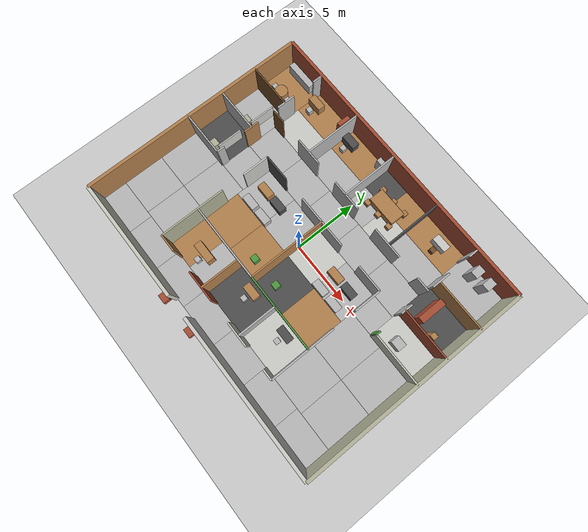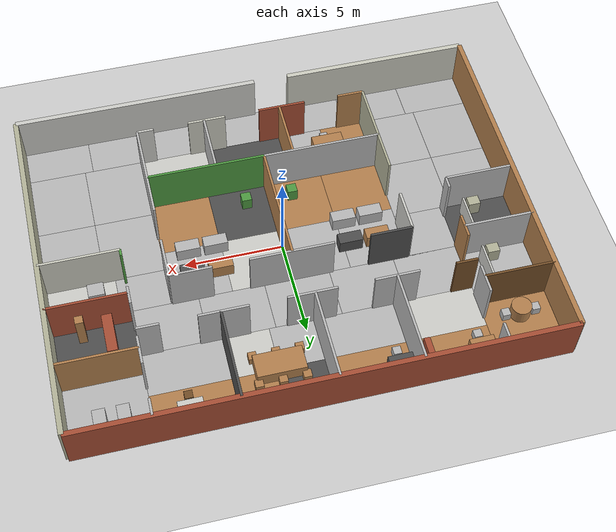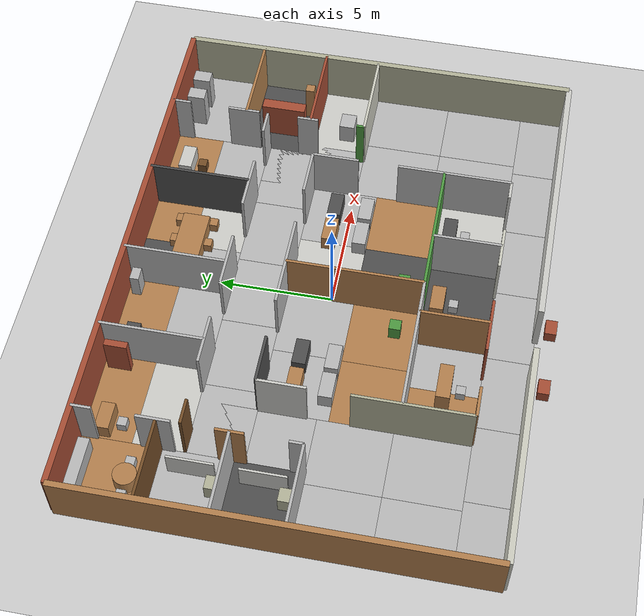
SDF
<?xml version="1.0"?>
<sdf version="1.6">
  <world name="office2">
    <include><uri>model://sun</uri></include>
    <include><uri>model://ground_plane</uri></include>

    <model name="floor_skin">
      <static>true</static>
      <link name="tiles">
        <visual name="f001"><pose>-10.25 7.25 0.002 0 0 0</pose><geometry><box><size>3.5 3.5 0.004</size></box></geometry>
    <material><script><uri>file://media/materials/scripts/gazebo.material</uri><name>Gazebo/WoodFloor</name></script></material></visual>
        <visual name="f002"><pose>-10.25 4 0.002 0 0 0</pose><geometry><box><size>3.5 3 0.004</size></box></geometry>
    <material><script><uri>file://media/materials/scripts/gazebo.material</uri><name>Gazebo/Pedestrian</name></script></material></visual>
        <visual name="f003"><pose>-10.25 1 0.002 0 0 0</pose><geometry><box><size>3.5 3 0.004</size></box></geometry>
    <material><script><uri>file://media/materials/scripts/gazebo.material</uri><name>Gazebo/Road</name></script></material></visual>
        <visual name="f004"><pose>-6.5 5.625 0.002 0 0 0</pose><geometry><box><size>4 2.25 0.004</size></box></geometry>
    <material><script><uri>file://media/materials/scripts/gazebo.material</uri><name>Gazebo/CeilingTiled</name></script></material></visual>
        <visual name="f005"><pose>-6.5 7.875 0.002 0 0 0</pose><geometry><box><size>4 2.25 0.004</size></box></geometry>
    <material><script><uri>file://media/materials/scripts/gazebo.material</uri><name>Gazebo/Wood</name></script></material></visual>
        <visual name="f006"><pose>-2.5 5.625 0.002 0 0 0</pose><geometry><box><size>4 2.25 0.004</size></box></geometry>
    <material><script><uri>file://media/materials/scripts/gazebo.material</uri><name>Gazebo/Steps</name></script></material></visual>
        <visual name="f007"><pose>-2.5 7.875 0.002 0 0 0</pose><geometry><box><size>4 2.25 0.004</size></box></geometry>
    <material><script><uri>file://media/materials/scripts/gazebo.material</uri><name>Gazebo/WoodFloor</name></script></material></visual>
        <visual name="f008"><pose>0.625 5.625 0.002 0 0 0</pose><geometry><box><size>2.25 2.25 0.004</size></box></geometry>
    <material><script><uri>file://media/materials/scripts/gazebo.material</uri><name>Gazebo/Pedestrian</name></script></material></visual>
        <visual name="f009"><pose>0.625 7.875 0.002 0 0 0</pose><geometry><box><size>2.25 2.25 0.004</size></box></geometry>
    <material><script><uri>file://media/materials/scripts/gazebo.material</uri><name>Gazebo/Road</name></script></material></visual>
        <visual name="f010"><pose>2.875 5.625 0.002 0 0 0</pose><geometry><box><size>2.25 2.25 0.004</size></box></geometry>
    <material><script><uri>file://media/materials/scripts/gazebo.material</uri><name>Gazebo/CeilingTiled</name></script></material></visual>
        <visual name="f011"><pose>2.875 7.875 0.002 0 0 0</pose><geometry><box><size>2.25 2.25 0.004</size></box></geometry>
    <material><script><uri>file://media/materials/scripts/gazebo.material</uri><name>Gazebo/Wood</name></script></material></visual>
        <visual name="f012"><pose>6 5.625 0.002 0 0 0</pose><geometry><box><size>4 2.25 0.004</size></box></geometry>
    <material><script><uri>file://media/materials/scripts/gazebo.material</uri><name>Gazebo/Steps</name></script></material></visual>
        <visual name="f013"><pose>6 7.875 0.002 0 0 0</pose><geometry><box><size>4 2.25 0.004</size></box></geometry>
    <material><script><uri>file://media/materials/scripts/gazebo.material</uri><name>Gazebo/WoodFloor</name></script></material></visual>
        <visual name="f014"><pose>10 7.25 0.002 0 0 0</pose><geometry><box><size>4 3.5 0.004</size></box></geometry>
    <material><script><uri>file://media/materials/scripts/gazebo.material</uri><name>Gazebo/Pedestrian</name></script></material></visual>
        <visual name="f015"><pose>10 4 0.002 0 0 0</pose><geometry><box><size>4 3 0.004</size></box></geometry>
    <material><script><uri>file://media/materials/scripts/gazebo.material</uri><name>Gazebo/Road</name></script></material></visual>
        <visual name="f016"><pose>10 1.25 0.002 0 0 0</pose><geometry><box><size>4 2.5 0.004</size></box></geometry>
    <material><script><uri>file://media/materials/scripts/gazebo.material</uri><name>Gazebo/CeilingTiled</name></script></material></visual>
        <visual name="f017"><pose>-4.5 -2.5 0.002 0 0 0</pose><geometry><box><size>3 3 0.004</size></box></geometry>
    <material><script><uri>file://media/materials/scripts/gazebo.material</uri><name>Gazebo/Wood</name></script></material></visual>
        <visual name="f018"><pose>-4.5 0.5 0.002 0 0 0</pose><geometry><box><size>3 3 0.004</size></box></geometry>
    <material><script><uri>file://media/materials/scripts/gazebo.material</uri><name>Gazebo/Steps</name></script></material></visual>
        <visual name="f019"><pose>-1.5 -2.5 0.002 0 0 0</pose><geometry><box><size>3 3 0.004</size></box></geometry>
    <material><script><uri>file://media/materials/scripts/gazebo.material</uri><name>Gazebo/WoodFloor</name></script></material></visual>
        <visual name="f020"><pose>-1.5 0.5 0.002 0 0 0</pose><geometry><box><size>3 3 0.004</size></box></geometry>
    <material><script><uri>file://media/materials/scripts/gazebo.material</uri><name>Gazebo/Pedestrian</name></script></material></visual>
        <visual name="f021"><pose>1.5 -2.5 0.002 0 0 0</pose><geometry><box><size>3 3 0.004</size></box></geometry>
    <material><script><uri>file://media/materials/scripts/gazebo.material</uri><name>Gazebo/Road</name></script></material></visual>
        <visual name="f022"><pose>1.5 0.5 0.002 0 0 0</pose><geometry><box><size>3 3 0.004</size></box></geometry>
    <material><script><uri>file://media/materials/scripts/gazebo.material</uri><name>Gazebo/CeilingTiled</name></script></material></visual>
        <visual name="f023"><pose>4.5 -2.5 0.002 0 0 0</pose><geometry><box><size>3 3 0.004</size></box></geometry>
    <material><script><uri>file://media/materials/scripts/gazebo.material</uri><name>Gazebo/Wood</name></script></material></visual>
        <visual name="f024"><pose>4.5 0.5 0.002 0 0 0</pose><geometry><box><size>3 3 0.004</size></box></geometry>
    <material><script><uri>file://media/materials/scripts/gazebo.material</uri><name>Gazebo/Steps</name></script></material></visual>
        <visual name="f025"><pose>-4.875 -5.5 0.002 0 0 0</pose><geometry><box><size>2.25 3 0.004</size></box></geometry>
    <material><script><uri>file://media/materials/scripts/gazebo.material</uri><name>Gazebo/WoodFloor</name></script></material></visual>
        <visual name="f026"><pose>-2.625 -5.5 0.002 0 0 0</pose><geometry><box><size>2.25 3 0.004</size></box></geometry>
    <material><script><uri>file://media/materials/scripts/gazebo.material</uri><name>Gazebo/Pedestrian</name></script></material></visual>
        <visual name="f027"><pose>0.5 -5.5 0.002 0 0 0</pose><geometry><box><size>4 3 0.004</size></box></geometry>
    <material><script><uri>file://media/materials/scripts/gazebo.material</uri><name>Gazebo/Road</name></script></material></visual>
        <visual name="f028"><pose>4.25 -5.5 0.002 0 0 0</pose><geometry><box><size>3.5 3 0.004</size></box></geometry>
    <material><script><uri>file://media/materials/scripts/gazebo.material</uri><name>Gazebo/CeilingTiled</name></script></material></visual>
        <visual name="f029"><pose>-6.85 3.25 0.002 0 0 0</pose><geometry><box><size>3.3 2.5 0.004</size></box></geometry>
    <material><script><uri>file://media/materials/scripts/gazebo.material</uri><name>Gazebo/Footway</name></script></material></visual>
        <visual name="f030"><pose>-3.55 3.25 0.002 0 0 0</pose><geometry><box><size>3.3 2.5 0.004</size></box></geometry>
    <material><script><uri>file://media/materials/scripts/gazebo.material</uri><name>Gazebo/Footway</name></script></material></visual>
        <visual name="f031"><pose>-0.25 3.25 0.002 0 0 0</pose><geometry><box><size>3.3 2.5 0.004</size></box></geometry>
    <material><script><uri>file://media/materials/scripts/gazebo.material</uri><name>Gazebo/Footway</name></script></material></visual>
        <visual name="f032"><pose>3.05 3.25 0.002 0 0 0</pose><geometry><box><size>3.3 2.5 0.004</size></box></geometry>
    <material><script><uri>file://media/materials/scripts/gazebo.material</uri><name>Gazebo/Footway</name></script></material></visual>
        <visual name="f033"><pose>6.35 3.25 0.002 0 0 0</pose><geometry><box><size>3.3 2.5 0.004</size></box></geometry>
    <material><script><uri>file://media/materials/scripts/gazebo.material</uri><name>Gazebo/Footway</name></script></material></visual>
        <visual name="f034"><pose>-7.25 0.75 0.002 0 0 0</pose><geometry><box><size>2.5 2.5 0.004</size></box></geometry>
    <material><script><uri>file://media/materials/scripts/gazebo.material</uri><name>Gazebo/Footway</name></script></material></visual>
        <visual name="f035"><pose>-7.25 3.25 0.002 0 0 0</pose><geometry><box><size>2.5 2.5 0.004</size></box></geometry>
    <material><script><uri>file://media/materials/scripts/gazebo.material</uri><name>Gazebo/Footway</name></script></material></visual>
        <visual name="f036"><pose>-10.5 -5.375 0.002 0 0 0</pose><geometry><box><size>3 3.25 0.004</size></box></geometry>
    <material><script><uri>file://media/materials/scripts/gazebo.material</uri><name>Gazebo/Footway</name></script></material></visual>
        <visual name="f037"><pose>-10.5 -2.125 0.002 0 0 0</pose><geometry><box><size>3 3.25 0.004</size></box></geometry>
    <material><script><uri>file://media/materials/scripts/gazebo.material</uri><name>Gazebo/Footway</name></script></material></visual>
        <visual name="f038"><pose>-7.5 -5.375 0.002 0 0 0</pose><geometry><box><size>3 3.25 0.004</size></box></geometry>
    <material><script><uri>file://media/materials/scripts/gazebo.material</uri><name>Gazebo/Footway</name></script></material></visual>
        <visual name="f039"><pose>-7.5 -2.125 0.002 0 0 0</pose><geometry><box><size>3 3.25 0.004</size></box></geometry>
    <material><script><uri>file://media/materials/scripts/gazebo.material</uri><name>Gazebo/Footway</name></script></material></visual>
        <visual name="f040"><pose>7.25 1.125 0.002 0 0 0</pose><geometry><box><size>2.5 2.25 0.004</size></box></geometry>
    <material><script><uri>file://media/materials/scripts/gazebo.material</uri><name>Gazebo/Footway</name></script></material></visual>
        <visual name="f041"><pose>7.25 3.375 0.002 0 0 0</pose><geometry><box><size>2.5 2.25 0.004</size></box></geometry>
    <material><script><uri>file://media/materials/scripts/gazebo.material</uri><name>Gazebo/Footway</name></script></material></visual>
        <visual name="f042"><pose>7.5 -5.25 0.002 0 0 0</pose><geometry><box><size>3 3.5 0.004</size></box></geometry>
    <material><script><uri>file://media/materials/scripts/gazebo.material</uri><name>Gazebo/Footway</name></script></material></visual>
        <visual name="f043"><pose>7.5 -1.75 0.002 0 0 0</pose><geometry><box><size>3 3.5 0.004</size></box></geometry>
    <material><script><uri>file://media/materials/scripts/gazebo.material</uri><name>Gazebo/Footway</name></script></material></visual>
        <visual name="f044"><pose>10.5 -5.25 0.002 0 0 0</pose><geometry><box><size>3 3.5 0.004</size></box></geometry>
    <material><script><uri>file://media/materials/scripts/gazebo.material</uri><name>Gazebo/Footway</name></script></material></visual>
        <visual name="f045"><pose>10.5 -1.75 0.002 0 0 0</pose><geometry><box><size>3 3.5 0.004</size></box></geometry>
    <material><script><uri>file://media/materials/scripts/gazebo.material</uri><name>Gazebo/Footway</name></script></material></visual>
        <visual name="f046"><pose>-10.2857 -8 0.002 0 0 0</pose><geometry><box><size>3.42857 2 0.004</size></box></geometry>
    <material><script><uri>file://media/materials/scripts/gazebo.material</uri><name>Gazebo/Footway</name></script></material></visual>
        <visual name="f047"><pose>-6.85714 -8 0.002 0 0 0</pose><geometry><box><size>3.42857 2 0.004</size></box></geometry>
    <material><script><uri>file://media/materials/scripts/gazebo.material</uri><name>Gazebo/Footway</name></script></material></visual>
        <visual name="f048"><pose>-3.42857 -8 0.002 0 0 0</pose><geometry><box><size>3.42857 2 0.004</size></box></geometry>
    <material><script><uri>file://media/materials/scripts/gazebo.material</uri><name>Gazebo/Footway</name></script></material></visual>
        <visual name="f049"><pose>0 -8 0.002 0 0 0</pose><geometry><box><size>3.42857 2 0.004</size></box></geometry>
    <material><script><uri>file://media/materials/scripts/gazebo.material</uri><name>Gazebo/Footway</name></script></material></visual>
        <visual name="f050"><pose>3.42857 -8 0.002 0 0 0</pose><geometry><box><size>3.42857 2 0.004</size></box></geometry>
    <material><script><uri>file://media/materials/scripts/gazebo.material</uri><name>Gazebo/Footway</name></script></material></visual>
        <visual name="f051"><pose>6.85714 -8 0.002 0 0 0</pose><geometry><box><size>3.42857 2 0.004</size></box></geometry>
    <material><script><uri>file://media/materials/scripts/gazebo.material</uri><name>Gazebo/Footway</name></script></material></visual>
        <visual name="f052"><pose>10.2857 -8 0.002 0 0 0</pose><geometry><box><size>3.42857 2 0.004</size></box></geometry>
    <material><script><uri>file://media/materials/scripts/gazebo.material</uri><name>Gazebo/Footway</name></script></material></visual>
      </link>
    </model>

    <model name="building">
      <static>true</static>
      <link name="walls">

        <!-- outer shell -->
        <collision name="w001_c"><pose>0 9 1.25 0 0 0</pose><geometry><box><size>24 0.25 2.5</size></box></geometry></collision>
        <visual   name="w001_v"><pose>0 9 1.25 0 0 0</pose><geometry><box><size>24 0.25 2.5</size></box></geometry>
    <material><script><uri>file://media/materials/scripts/gazebo.material</uri><name>Gazebo/Bricks</name></script></material></visual>
        <collision name="w002_c"><pose>-7.2 -9 1.25 0 0 0</pose><geometry><box><size>9.6 0.25 2.5</size></box></geometry></collision>
        <visual   name="w002_v"><pose>-7.2 -9 1.25 0 0 0</pose><geometry><box><size>9.6 0.25 2.5</size></box></geometry>
    <material><script><uri>file://media/materials/scripts/gazebo.material</uri><name>Gazebo/PaintedWall</name></script></material></visual>
        <collision name="w003_c"><pose>5.7 -9 1.25 0 0 0</pose><geometry><box><size>12.6 0.25 2.5</size></box></geometry></collision>
        <visual   name="w003_v"><pose>5.7 -9 1.25 0 0 0</pose><geometry><box><size>12.6 0.25 2.5</size></box></geometry>
    <material><script><uri>file://media/materials/scripts/gazebo.material</uri><name>Gazebo/CeilingTiled</name></script></material></visual>
        <collision name="w004_c"><pose>12 0 1.25 0 0 0</pose><geometry><box><size>0.25 18 2.5</size></box></geometry></collision>
        <visual   name="w004_v"><pose>12 0 1.25 0 0 0</pose><geometry><box><size>0.25 18 2.5</size></box></geometry>
    <material><script><uri>file://media/materials/scripts/gazebo.material</uri><name>Gazebo/Residential</name></script></material></visual>
        <collision name="w005_c"><pose>-12 0 1.25 0 0 0</pose><geometry><box><size>0.25 18 2.5</size></box></geometry></collision>
        <visual   name="w005_v"><pose>-12 0 1.25 0 0 0</pose><geometry><box><size>0.25 18 2.5</size></box></geometry>
    <material><script><uri>file://media/materials/scripts/gazebo.material</uri><name>Gazebo/Wood</name></script></material></visual>

        <collision name="w006_c"><pose>-8.5 8.575 1.25 0 0 0</pose><geometry><box><size>0.12 0.85 2.5</size></box></geometry></collision>
        <visual   name="w006_v"><pose>-8.5 8.575 1.25 0 0 0</pose><geometry><box><size>0.12 0.85 2.5</size></box></geometry>
    <material><script><uri>file://media/materials/scripts/gazebo.material</uri><name>Gazebo/BuildingFrame</name></script></material></visual>
        <collision name="w007_c"><pose>-8.5 5.625 1.25 0 0 0</pose><geometry><box><size>0.12 1.45 2.5</size></box></geometry></collision>
        <visual   name="w007_v"><pose>-8.5 5.625 1.25 0 0 0</pose><geometry><box><size>0.12 1.45 2.5</size></box></geometry>
    <material><script><uri>file://media/materials/scripts/gazebo.material</uri><name>Gazebo/Steps</name></script></material></visual>
        <collision name="w008_c"><pose>-8.5 2.5 1.25 0 0 0</pose><geometry><box><size>0.12 1.2 2.5</size></box></geometry></collision>
        <visual   name="w008_v"><pose>-8.5 2.5 1.25 0 0 0</pose><geometry><box><size>0.12 1.2 2.5</size></box></geometry>
    <material><script><uri>file://media/materials/scripts/gazebo.material</uri><name>Gazebo/WoodPallet</name></script></material></visual>
        <collision name="w009_c"><pose>-8.5 -0.2 1.25 0 0 0</pose><geometry><box><size>0.12 0.6 2.5</size></box></geometry></collision>
        <visual   name="w009_v"><pose>-8.5 -0.2 1.25 0 0 0</pose><geometry><box><size>0.12 0.6 2.5</size></box></geometry>
    <material><script><uri>file://media/materials/scripts/gazebo.material</uri><name>Gazebo/Motorway</name></script></material></visual>
        <collision name="w010_c"><pose>-10.25 5.5 1.25 0 0 0</pose><geometry><box><size>3.5 0.12 2.5</size></box></geometry></collision>
        <visual   name="w010_v"><pose>-10.25 5.5 1.25 0 0 0</pose><geometry><box><size>3.5 0.12 2.5</size></box></geometry>
    <material><script><uri>file://media/materials/scripts/gazebo.material</uri><name>Gazebo/Trunk</name></script></material></visual>
        <collision name="w011_c"><pose>-10.25 2.5 1.25 0 0 0</pose><geometry><box><size>3.5 0.12 2.5</size></box></geometry></collision>
        <visual   name="w011_v"><pose>-10.25 2.5 1.25 0 0 0</pose><geometry><box><size>3.5 0.12 2.5</size></box></geometry>
    <material><script><uri>file://media/materials/scripts/gazebo.material</uri><name>Gazebo/Primary</name></script></material></visual>
        <collision name="w012_c"><pose>-10.25 -0.5 1.25 0 0 0</pose><geometry><box><size>3.5 0.12 2.5</size></box></geometry></collision>
        <visual   name="w012_v"><pose>-10.25 -0.5 1.25 0 0 0</pose><geometry><box><size>3.5 0.12 2.5</size></box></geometry>
    <material><script><uri>file://media/materials/scripts/gazebo.material</uri><name>Gazebo/Secondary</name></script></material></visual>

        <!-- V2-V4: north-row internal dividers (no doors needed: each room
             reaches the corridor independently through its own south door) -->
        <collision name="w013_c"><pose>-4.5 6.75 1.25 0 0 0</pose><geometry><box><size>0.12 4.5 2.5</size></box></geometry></collision>
        <visual   name="w013_v"><pose>-4.5 6.75 1.25 0 0 0</pose><geometry><box><size>0.12 4.5 2.5</size></box></geometry>
    <material><script><uri>file://media/materials/scripts/gazebo.material</uri><name>Gazebo/PioneerBody</name></script></material></visual>
        <collision name="w014_c"><pose>-0.5 6.75 1.25 0 0 0</pose><geometry><box><size>0.12 4.5 2.5</size></box></geometry></collision>
        <visual   name="w014_v"><pose>-0.5 6.75 1.25 0 0 0</pose><geometry><box><size>0.12 4.5 2.5</size></box></geometry>
    <material><script><uri>file://media/materials/scripts/gazebo.material</uri><name>Gazebo/Pioneer2Body</name></script></material></visual>
        <collision name="w015_c"><pose>4 6.75 1.25 0 0 0</pose><geometry><box><size>0.12 4.5 2.5</size></box></geometry></collision>
        <visual   name="w015_v"><pose>4 6.75 1.25 0 0 0</pose><geometry><box><size>0.12 4.5 2.5</size></box></geometry>
    <material><script><uri>file://media/materials/scripts/gazebo.material</uri><name>Gazebo/Road</name></script></material></visual>

        <collision name="w016_c"><pose>8 8.575 1.25 0 0 0</pose><geometry><box><size>0.12 0.85 2.5</size></box></geometry></collision>
        <visual   name="w016_v"><pose>8 8.575 1.25 0 0 0</pose><geometry><box><size>0.12 0.85 2.5</size></box></geometry>
    <material><script><uri>file://media/materials/scripts/gazebo.material</uri><name>Gazebo/Tertiary</name></script></material></visual>
        <collision name="w017_c"><pose>8 5.625 1.25 0 0 0</pose><geometry><box><size>0.12 1.45 2.5</size></box></geometry></collision>
        <visual   name="w017_v"><pose>8 5.625 1.25 0 0 0</pose><geometry><box><size>0.12 1.45 2.5</size></box></geometry>
    <material><script><uri>file://media/materials/scripts/gazebo.material</uri><name>Gazebo/Pedestrian</name></script></material></visual>
        <collision name="w018_c"><pose>8 2.625 1.25 0 0 0</pose><geometry><box><size>0.12 0.95 2.5</size></box></geometry></collision>
        <visual   name="w018_v"><pose>8 2.625 1.25 0 0 0</pose><geometry><box><size>0.12 0.95 2.5</size></box></geometry>
    <material><script><uri>file://media/materials/scripts/gazebo.material</uri><name>Gazebo/Runway</name></script></material></visual>
        <collision name="w019_c"><pose>8 0.175 1.25 0 0 0</pose><geometry><box><size>0.12 0.35 2.5</size></box></geometry></collision>
        <visual   name="w019_v"><pose>8 0.175 1.25 0 0 0</pose><geometry><box><size>0.12 0.35 2.5</size></box></geometry>
    <material><script><uri>file://media/materials/scripts/gazebo.material</uri><name>Gazebo/Grass</name></script></material></visual>
        <!-- east utility column: horizontal partitions actually separating
             Server/IT / Storage / Copy-Print into 3 distinct rooms -->
        <collision name="w020_c"><pose>10 5.5 1.25 0 0 0</pose><geometry><box><size>4 0.12 2.5</size></box></geometry></collision>
        <visual   name="w020_v"><pose>10 5.5 1.25 0 0 0</pose><geometry><box><size>4 0.12 2.5</size></box></geometry>
    <material><script><uri>file://media/materials/scripts/gazebo.material</uri><name>Gazebo/WoodFloor</name></script></material></visual>
        <collision name="w021_c"><pose>10 2.5 1.25 0 0 0</pose><geometry><box><size>4 0.12 2.5</size></box></geometry></collision>
        <visual   name="w021_v"><pose>10 2.5 1.25 0 0 0</pose><geometry><box><size>4 0.12 2.5</size></box></geometry>
    <material><script><uri>file://media/materials/scripts/gazebo.material</uri><name>Gazebo/Bricks</name></script></material></visual>
        <collision name="w022_c"><pose>10 0 1.25 0 0 0</pose><geometry><box><size>4 0.12 2.5</size></box></geometry></collision>
        <visual   name="w022_v"><pose>10 0 1.25 0 0 0</pose><geometry><box><size>4 0.12 2.5</size></box></geometry>
    <material><script><uri>file://media/materials/scripts/gazebo.material</uri><name>Gazebo/PaintedWall</name></script></material></visual>

        <!-- V6: Open Office A / Reception vs west branch corridor -->
        <collision name="w023_c"><pose>-6 0.95 1.25 0 0 0</pose><geometry><box><size>0.12 2.1 2.5</size></box></geometry></collision>
        <visual   name="w023_v"><pose>-6 0.95 1.25 0 0 0</pose><geometry><box><size>0.12 2.1 2.5</size></box></geometry>
    <material><script><uri>file://media/materials/scripts/gazebo.material</uri><name>Gazebo/CeilingTiled</name></script></material></visual>
        <collision name="w024_c"><pose>-6 -4.45 1.25 0 0 0</pose><geometry><box><size>0.12 5.1 2.5</size></box></geometry></collision>
        <visual   name="w024_v"><pose>-6 -4.45 1.25 0 0 0</pose><geometry><box><size>0.12 5.1 2.5</size></box></geometry>
    <material><script><uri>file://media/materials/scripts/gazebo.material</uri><name>Gazebo/Residential</name></script></material></visual>

        <!-- V7: Open Office A | Open Office B shared centre wall -->
        <collision name="w025_c"><pose>0 -1 1.25 0 0 0</pose><geometry><box><size>0.12 6 2.5</size></box></geometry></collision>
        <visual   name="w025_v"><pose>0 -1 1.25 0 0 0</pose><geometry><box><size>0.12 6 2.5</size></box></geometry>
    <material><script><uri>file://media/materials/scripts/gazebo.material</uri><name>Gazebo/Wood</name></script></material></visual>

        <!-- V8: Open Office B / Office5 vs east branch corridor -->
        <collision name="w026_c"><pose>6 0.95 1.25 0 0 0</pose><geometry><box><size>0.12 2.1 2.5</size></box></geometry></collision>
        <visual   name="w026_v"><pose>6 0.95 1.25 0 0 0</pose><geometry><box><size>0.12 2.1 2.5</size></box></geometry>
    <material><script><uri>file://media/materials/scripts/gazebo.material</uri><name>Gazebo/BuildingFrame</name></script></material></visual>
        <collision name="w027_c"><pose>6 -4.45 1.25 0 0 0</pose><geometry><box><size>0.12 5.1 2.5</size></box></geometry></collision>
        <visual   name="w027_v"><pose>6 -4.45 1.25 0 0 0</pose><geometry><box><size>0.12 5.1 2.5</size></box></geometry>
    <material><script><uri>file://media/materials/scripts/gazebo.material</uri><name>Gazebo/Steps</name></script></material></visual>

        <!-- V9/V10: south-row internal dividers (no doors: each room has
             its own south door onto the entrance foyer) -->
        <collision name="w028_c"><pose>-1.5 -5.5 1.25 0 0 0</pose><geometry><box><size>0.12 3 2.5</size></box></geometry></collision>
        <visual   name="w028_v"><pose>-1.5 -5.5 1.25 0 0 0</pose><geometry><box><size>0.12 3 2.5</size></box></geometry>
    <material><script><uri>file://media/materials/scripts/gazebo.material</uri><name>Gazebo/WoodPallet</name></script></material></visual>
        <collision name="w029_c"><pose>2.5 -5.5 1.25 0 0 0</pose><geometry><box><size>0.12 3 2.5</size></box></geometry></collision>
        <visual   name="w029_v"><pose>2.5 -5.5 1.25 0 0 0</pose><geometry><box><size>0.12 3 2.5</size></box></geometry>
    <material><script><uri>file://media/materials/scripts/gazebo.material</uri><name>Gazebo/Motorway</name></script></material></visual>

        <!-- H1: north-row south walls vs north corridor, 4 doors. All 4 were
             already centred on their own room, so widening kept the same
             centres (-6.5,-2.5,1.75,6.0). -->
        <collision name="w030_c"><pose>-7.95 4.5 1.25 0 0 0</pose><geometry><box><size>1.1 0.12 2.5</size></box></geometry></collision>
        <visual   name="w030_v"><pose>-7.95 4.5 1.25 0 0 0</pose><geometry><box><size>1.1 0.12 2.5</size></box></geometry>
    <material><script><uri>file://media/materials/scripts/gazebo.material</uri><name>Gazebo/Trunk</name></script></material></visual>
        <collision name="w031_c"><pose>-4.5 4.5 1.25 0 0 0</pose><geometry><box><size>2.2 0.12 2.5</size></box></geometry></collision>
        <visual   name="w031_v"><pose>-4.5 4.5 1.25 0 0 0</pose><geometry><box><size>2.2 0.12 2.5</size></box></geometry>
    <material><script><uri>file://media/materials/scripts/gazebo.material</uri><name>Gazebo/Primary</name></script></material></visual>
        <collision name="w032_c"><pose>-0.375 4.5 1.25 0 0 0</pose><geometry><box><size>2.45 0.12 2.5</size></box></geometry></collision>
        <visual   name="w032_v"><pose>-0.375 4.5 1.25 0 0 0</pose><geometry><box><size>2.45 0.12 2.5</size></box></geometry>
    <material><script><uri>file://media/materials/scripts/gazebo.material</uri><name>Gazebo/Secondary</name></script></material></visual>
        <collision name="w033_c"><pose>3.875 4.5 1.25 0 0 0</pose><geometry><box><size>2.45 0.12 2.5</size></box></geometry></collision>
        <visual   name="w033_v"><pose>3.875 4.5 1.25 0 0 0</pose><geometry><box><size>2.45 0.12 2.5</size></box></geometry>
    <material><script><uri>file://media/materials/scripts/gazebo.material</uri><name>Gazebo/PioneerBody</name></script></material></visual>
        <collision name="w034_c"><pose>7.45 4.5 1.25 0 0 0</pose><geometry><box><size>1.1 0.12 2.5</size></box></geometry></collision>
        <visual   name="w034_v"><pose>7.45 4.5 1.25 0 0 0</pose><geometry><box><size>1.1 0.12 2.5</size></box></geometry>
    <material><script><uri>file://media/materials/scripts/gazebo.material</uri><name>Gazebo/Pioneer2Body</name></script></material></visual>

        <!-- H2b: north corridor vs Open Office A/B, 2 doors -->
        <collision name="w035_c"><pose>-4.95 2 1.25 0 0 0</pose><geometry><box><size>2.1 0.12 2.5</size></box></geometry></collision>
        <visual   name="w035_v"><pose>-4.95 2 1.25 0 0 0</pose><geometry><box><size>2.1 0.12 2.5</size></box></geometry>
    <material><script><uri>file://media/materials/scripts/gazebo.material</uri><name>Gazebo/Road</name></script></material></visual>
        <collision name="w036_c"><pose>0 2 1.25 0 0 0</pose><geometry><box><size>4.2 0.12 2.5</size></box></geometry></collision>
        <visual   name="w036_v"><pose>0 2 1.25 0 0 0</pose><geometry><box><size>4.2 0.12 2.5</size></box></geometry>
    <material><script><uri>file://media/materials/scripts/gazebo.material</uri><name>Gazebo/Tertiary</name></script></material></visual>
        <collision name="w037_c"><pose>4.95 2 1.25 0 0 0</pose><geometry><box><size>2.1 0.12 2.5</size></box></geometry></collision>
        <visual   name="w037_v"><pose>4.95 2 1.25 0 0 0</pose><geometry><box><size>2.1 0.12 2.5</size></box></geometry>
    <material><script><uri>file://media/materials/scripts/gazebo.material</uri><name>Gazebo/Pedestrian</name></script></material></visual>

        <!-- H3: Open Office A/B south wall vs south-row rooms (no doors:
             both open offices already have west/east/north doors) -->
        <collision name="w038_c"><pose>-3 -4 1.25 0 0 0</pose><geometry><box><size>6 0.12 2.5</size></box></geometry></collision>
        <visual   name="w038_v"><pose>-3 -4 1.25 0 0 0</pose><geometry><box><size>6 0.12 2.5</size></box></geometry>
    <material><script><uri>file://media/materials/scripts/gazebo.material</uri><name>Gazebo/Runway</name></script></material></visual>
        <collision name="w039_c"><pose>3 -4 1.25 0 0 0</pose><geometry><box><size>6 0.12 2.5</size></box></geometry></collision>
        <visual   name="w039_v"><pose>3 -4 1.25 0 0 0</pose><geometry><box><size>6 0.12 2.5</size></box></geometry>
    <material><script><uri>file://media/materials/scripts/gazebo.material</uri><name>Gazebo/Grass</name></script></material></visual>

        <!-- H4: south-row rooms vs entrance foyer, 3 doors. All 3 were already
             centred on their own room (-3.75, 0.5, 4.25), kept unchanged. -->
        <collision name="w040_c"><pose>-5.325 -7 1.25 0 0 0</pose><geometry><box><size>1.35 0.12 2.5</size></box></geometry></collision>
        <visual   name="w040_v"><pose>-5.325 -7 1.25 0 0 0</pose><geometry><box><size>1.35 0.12 2.5</size></box></geometry>
    <material><script><uri>file://media/materials/scripts/gazebo.material</uri><name>Gazebo/WoodFloor</name></script></material></visual>
        <collision name="w041_c"><pose>-1.625 -7 1.25 0 0 0</pose><geometry><box><size>2.45 0.12 2.5</size></box></geometry></collision>
        <visual   name="w041_v"><pose>-1.625 -7 1.25 0 0 0</pose><geometry><box><size>2.45 0.12 2.5</size></box></geometry>
    <material><script><uri>file://media/materials/scripts/gazebo.material</uri><name>Gazebo/Bricks</name></script></material></visual>
        <collision name="w042_c"><pose>2.375 -7 1.25 0 0 0</pose><geometry><box><size>1.95 0.12 2.5</size></box></geometry></collision>
        <visual   name="w042_v"><pose>2.375 -7 1.25 0 0 0</pose><geometry><box><size>1.95 0.12 2.5</size></box></geometry>
    <material><script><uri>file://media/materials/scripts/gazebo.material</uri><name>Gazebo/PaintedWall</name></script></material></visual>
        <collision name="w043_c"><pose>5.575 -7 1.25 0 0 0</pose><geometry><box><size>0.85 0.12 2.5</size></box></geometry></collision>
        <visual   name="w043_v"><pose>5.575 -7 1.25 0 0 0</pose><geometry><box><size>0.85 0.12 2.5</size></box></geometry>
    <material><script><uri>file://media/materials/scripts/gazebo.material</uri><name>Gazebo/CeilingTiled</name></script></material></visual>

      </link>
    </model>

    <!-- Reception: desk beside the main entrance -->
    <model name="reception_desk"><static>true</static><pose>-3.75 -5.5 0.5 0 0 0</pose>
      <link name="l"><collision name="c"><geometry><box><size>1.6 0.6 1</size></box></geometry></collision>
        <visual name="v"><geometry><box><size>1.6 0.6 1</size></box></geometry>
          <material><script><uri>file://media/materials/scripts/gazebo.material</uri><name>Gazebo/Wood</name></script></material></visual></link></model>
    <model name="reception_chair"><static>true</static><pose>-3.75 -6.2 0.225 0 0 0</pose>
      <link name="l"><collision name="c"><geometry><box><size>0.4 0.4 0.45</size></box></geometry></collision>
        <visual name="v"><geometry><box><size>0.4 0.4 0.45</size></box></geometry>
          <material><script><uri>file://media/materials/scripts/gazebo.material</uri><name>Gazebo/Steps</name></script></material></visual></link></model>
    <!-- Office 1: desk, chair, bookshelf -->
    <model name="o1_desk"><static>true</static><pose>-7.8 8 0.375 0 0 0</pose>
      <link name="l"><collision name="c"><geometry><box><size>1.2 0.6 0.75</size></box></geometry></collision>
        <visual name="v"><geometry><box><size>1.2 0.6 0.75</size></box></geometry>
          <material><script><uri>file://media/materials/scripts/gazebo.material</uri><name>Gazebo/WoodPallet</name></script></material></visual></link></model>
    <model name="o1_chair"><static>true</static><pose>-7.8 7.3 0.225 0 0 0</pose>
      <link name="l"><collision name="c"><geometry><box><size>0.4 0.4 0.45</size></box></geometry></collision>
        <visual name="v"><geometry><box><size>0.4 0.4 0.45</size></box></geometry>
          <material><script><uri>file://media/materials/scripts/gazebo.material</uri><name>Gazebo/Steps</name></script></material></visual></link></model>
    <model name="o1_shelf"><static>true</static><pose>-5 8.2 0.9 0 0 0</pose>
      <link name="l"><collision name="c"><geometry><box><size>0.3 1 1.8</size></box></geometry></collision>
        <visual name="v"><geometry><box><size>0.3 1 1.8</size></box></geometry>
          <material><script><uri>file://media/materials/scripts/gazebo.material</uri><name>Gazebo/Bricks</name></script></material></visual></link></model>
    <!-- Office 2: desk, chair, cabinet -->
    <model name="o2_desk"><static>true</static><pose>-3.8 8 0.375 0 0 0</pose>
      <link name="l"><collision name="c"><geometry><box><size>1.2 0.6 0.75</size></box></geometry></collision>
        <visual name="v"><geometry><box><size>1.2 0.6 0.75</size></box></geometry>
          <material><script><uri>file://media/materials/scripts/gazebo.material</uri><name>Gazebo/Road</name></script></material></visual></link></model>
    <model name="o2_chair"><static>true</static><pose>-3.8 7.3 0.225 0 0 0</pose>
      <link name="l"><collision name="c"><geometry><box><size>0.4 0.4 0.45</size></box></geometry></collision>
        <visual name="v"><geometry><box><size>0.4 0.4 0.45</size></box></geometry>
          <material><script><uri>file://media/materials/scripts/gazebo.material</uri><name>Gazebo/Runway</name></script></material></visual></link></model>
    <model name="o2_cabinet"><static>true</static><pose>-1 8.5 0.6 0 0 0</pose>
      <link name="l"><collision name="c"><geometry><box><size>0.6 0.4 1.2</size></box></geometry></collision>
        <visual name="v"><geometry><box><size>0.6 0.4 1.2</size></box></geometry>
          <material><script><uri>file://media/materials/scripts/gazebo.material</uri><name>Gazebo/Pedestrian</name></script></material></visual></link></model>
    <!-- Meeting Room: conference table + 6 chairs -->
    <model name="mtg_table"><static>true</static><pose>1.75 6.75 0.375 0 0 0</pose>
      <link name="l"><collision name="c"><geometry><box><size>2.4 1.2 0.75</size></box></geometry></collision>
        <visual name="v"><geometry><box><size>2.4 1.2 0.75</size></box></geometry>
          <material><script><uri>file://media/materials/scripts/gazebo.material</uri><name>Gazebo/Wood</name></script></material></visual></link></model>
    <model name="mtg_chair_1"><static>true</static><pose>0.6 6 0.225 0 0 0</pose>
      <link name="l"><collision name="c"><geometry><box><size>0.4 0.4 0.45</size></box></geometry></collision>
        <visual name="v"><geometry><box><size>0.4 0.4 0.45</size></box></geometry>
          <material><script><uri>file://media/materials/scripts/gazebo.material</uri><name>Gazebo/WoodPallet</name></script></material></visual></link></model>
    <model name="mtg_chair_2"><static>true</static><pose>1.75 6 0.225 0 0 0</pose>
      <link name="l"><collision name="c"><geometry><box><size>0.4 0.4 0.45</size></box></geometry></collision>
        <visual name="v"><geometry><box><size>0.4 0.4 0.45</size></box></geometry>
          <material><script><uri>file://media/materials/scripts/gazebo.material</uri><name>Gazebo/WoodPallet</name></script></material></visual></link></model>
    <model name="mtg_chair_3"><static>true</static><pose>2.9 6 0.225 0 0 0</pose>
      <link name="l"><collision name="c"><geometry><box><size>0.4 0.4 0.45</size></box></geometry></collision>
        <visual name="v"><geometry><box><size>0.4 0.4 0.45</size></box></geometry>
          <material><script><uri>file://media/materials/scripts/gazebo.material</uri><name>Gazebo/WoodPallet</name></script></material></visual></link></model>
    <model name="mtg_chair_4"><static>true</static><pose>0.6 7.5 0.225 0 0 0</pose>
      <link name="l"><collision name="c"><geometry><box><size>0.4 0.4 0.45</size></box></geometry></collision>
        <visual name="v"><geometry><box><size>0.4 0.4 0.45</size></box></geometry>
          <material><script><uri>file://media/materials/scripts/gazebo.material</uri><name>Gazebo/WoodPallet</name></script></material></visual></link></model>
    <model name="mtg_chair_5"><static>true</static><pose>1.75 7.5 0.225 0 0 0</pose>
      <link name="l"><collision name="c"><geometry><box><size>0.4 0.4 0.45</size></box></geometry></collision>
        <visual name="v"><geometry><box><size>0.4 0.4 0.45</size></box></geometry>
          <material><script><uri>file://media/materials/scripts/gazebo.material</uri><name>Gazebo/WoodPallet</name></script></material></visual></link></model>
    <model name="mtg_chair_6"><static>true</static><pose>2.9 7.5 0.225 0 0 0</pose>
      <link name="l"><collision name="c"><geometry><box><size>0.4 0.4 0.45</size></box></geometry></collision>
        <visual name="v"><geometry><box><size>0.4 0.4 0.45</size></box></geometry>
          <material><script><uri>file://media/materials/scripts/gazebo.material</uri><name>Gazebo/WoodPallet</name></script></material></visual></link></model>
    <!-- Office 3: desk, chair -->
    <model name="o3_desk"><static>true</static><pose>6.2 8 0.375 0 0 0</pose>
      <link name="l"><collision name="c"><geometry><box><size>1.2 0.6 0.75</size></box></geometry></collision>
        <visual name="v"><geometry><box><size>1.2 0.6 0.75</size></box></geometry>
          <material><script><uri>file://media/materials/scripts/gazebo.material</uri><name>Gazebo/CeilingTiled</name></script></material></visual></link></model>
    <model name="o3_chair"><static>true</static><pose>6.2 7.3 0.225 0 0 0</pose>
      <link name="l"><collision name="c"><geometry><box><size>0.4 0.4 0.45</size></box></geometry></collision>
        <visual name="v"><geometry><box><size>0.4 0.4 0.45</size></box></geometry>
          <material><script><uri>file://media/materials/scripts/gazebo.material</uri><name>Gazebo/Trunk</name></script></material></visual></link></model>
    <!-- Server/IT Room: two server racks -->
    <model name="rack_1"><static>true</static><pose>9.2 8.2 0.9 0 0 0</pose>
      <link name="l"><collision name="c"><geometry><box><size>0.6 0.8 1.8</size></box></geometry></collision>
        <visual name="v"><geometry><box><size>0.6 0.8 1.8</size></box></geometry>
          <material><script><uri>file://media/materials/scripts/gazebo.material</uri><name>Gazebo/BuildingFrame</name></script></material></visual></link></model>
    <model name="rack_2"><static>true</static><pose>10.3 8.2 0.9 0 0 0</pose>
      <link name="l"><collision name="c"><geometry><box><size>0.6 0.8 1.8</size></box></geometry></collision>
        <visual name="v"><geometry><box><size>0.6 0.8 1.8</size></box></geometry>
          <material><script><uri>file://media/materials/scripts/gazebo.material</uri><name>Gazebo/Steps</name></script></material></visual></link></model>
    <!-- Storage: shelving units -->
    <model name="shelf_1"><static>true</static><pose>9.2 4 0.9 0 0 0</pose>
      <link name="l"><collision name="c"><geometry><box><size>0.5 2 1.8</size></box></geometry></collision>
        <visual name="v"><geometry><box><size>0.5 2 1.8</size></box></geometry>
          <material><script><uri>file://media/materials/scripts/gazebo.material</uri><name>Gazebo/Bricks</name></script></material></visual></link></model>
    <model name="shelf_2"><static>true</static><pose>10.5 3 0.9 0 0 0</pose>
      <link name="l"><collision name="c"><geometry><box><size>0.4 0.4 1.8</size></box></geometry></collision>
        <visual name="v"><geometry><box><size>0.4 0.4 1.8</size></box></geometry>
          <material><script><uri>file://media/materials/scripts/gazebo.material</uri><name>Gazebo/WoodPallet</name></script></material></visual></link></model>
    <!-- Copy/Print: copier/printer unit -->
    <model name="copier"><static>true</static><pose>9.5 1 0.5 0 0 0</pose>
      <link name="l"><collision name="c"><geometry><box><size>0.8 0.7 1</size></box></geometry></collision>
        <visual name="v"><geometry><box><size>0.8 0.7 1</size></box></geometry>
          <material><script><uri>file://media/materials/scripts/gazebo.material</uri><name>Gazebo/PioneerBody</name></script></material></visual></link></model>
    <!-- Open Office A: 4-desk cluster + a plant (planter-box, see header) -->
    <model name="ooa_desk_1"><static>true</static><pose>-4.7 0.7 0.375 0 0 0</pose>
      <link name="l"><collision name="c"><geometry><box><size>1.2 0.6 0.75</size></box></geometry></collision>
        <visual name="v"><geometry><box><size>1.2 0.6 0.75</size></box></geometry>
          <material><script><uri>file://media/materials/scripts/gazebo.material</uri><name>Gazebo/WoodPallet</name></script></material></visual></link></model>
    <model name="ooa_desk_2"><static>true</static><pose>-3.3 0.7 0.375 0 0 0</pose>
      <link name="l"><collision name="c"><geometry><box><size>1.2 0.6 0.75</size></box></geometry></collision>
        <visual name="v"><geometry><box><size>1.2 0.6 0.75</size></box></geometry>
          <material><script><uri>file://media/materials/scripts/gazebo.material</uri><name>Gazebo/Road</name></script></material></visual></link></model>
    <model name="ooa_desk_3"><static>true</static><pose>-4.7 -0.7 0.375 0 0 0</pose>
      <link name="l"><collision name="c"><geometry><box><size>1.2 0.6 0.75</size></box></geometry></collision>
        <visual name="v"><geometry><box><size>1.2 0.6 0.75</size></box></geometry>
          <material><script><uri>file://media/materials/scripts/gazebo.material</uri><name>Gazebo/Motorway</name></script></material></visual></link></model>
    <model name="ooa_desk_4"><static>true</static><pose>-3.3 -0.7 0.375 0 0 0</pose>
      <link name="l"><collision name="c"><geometry><box><size>1.2 0.6 0.75</size></box></geometry></collision>
        <visual name="v"><geometry><box><size>1.2 0.6 0.75</size></box></geometry>
          <material><script><uri>file://media/materials/scripts/gazebo.material</uri><name>Gazebo/Pedestrian</name></script></material></visual></link></model>
    <model name="ooa_plant"><static>true</static><pose>-1.2 -3 0.35 0 0 0</pose>
      <link name="l"><collision name="c"><geometry><box><size>0.5 0.5 0.7</size></box></geometry></collision>
        <visual name="v"><geometry><box><size>0.5 0.5 0.7</size></box></geometry>
          <material><script><uri>file://media/materials/scripts/gazebo.material</uri><name>Gazebo/Grass</name></script></material></visual></link></model>
    <!-- Open Office B: mirrors Open Office A -->
    <model name="oob_desk_1"><static>true</static><pose>3.3 0.7 0.375 0 0 0</pose>
      <link name="l"><collision name="c"><geometry><box><size>1.2 0.6 0.75</size></box></geometry></collision>
        <visual name="v"><geometry><box><size>1.2 0.6 0.75</size></box></geometry>
          <material><script><uri>file://media/materials/scripts/gazebo.material</uri><name>Gazebo/WoodPallet</name></script></material></visual></link></model>
    <model name="oob_desk_2"><static>true</static><pose>4.7 0.7 0.375 0 0 0</pose>
      <link name="l"><collision name="c"><geometry><box><size>1.2 0.6 0.75</size></box></geometry></collision>
        <visual name="v"><geometry><box><size>1.2 0.6 0.75</size></box></geometry>
          <material><script><uri>file://media/materials/scripts/gazebo.material</uri><name>Gazebo/Road</name></script></material></visual></link></model>
    <model name="oob_desk_3"><static>true</static><pose>3.3 -0.7 0.375 0 0 0</pose>
      <link name="l"><collision name="c"><geometry><box><size>1.2 0.6 0.75</size></box></geometry></collision>
        <visual name="v"><geometry><box><size>1.2 0.6 0.75</size></box></geometry>
          <material><script><uri>file://media/materials/scripts/gazebo.material</uri><name>Gazebo/Motorway</name></script></material></visual></link></model>
    <model name="oob_desk_4"><static>true</static><pose>4.7 -0.7 0.375 0 0 0</pose>
      <link name="l"><collision name="c"><geometry><box><size>1.2 0.6 0.75</size></box></geometry></collision>
        <visual name="v"><geometry><box><size>1.2 0.6 0.75</size></box></geometry>
          <material><script><uri>file://media/materials/scripts/gazebo.material</uri><name>Gazebo/Pedestrian</name></script></material></visual></link></model>
    <model name="oob_plant"><static>true</static><pose>1.2 -3 0.35 0 0 0</pose>
      <link name="l"><collision name="c"><geometry><box><size>0.5 0.5 0.7</size></box></geometry></collision>
        <visual name="v"><geometry><box><size>0.5 0.5 0.7</size></box></geometry>
          <material><script><uri>file://media/materials/scripts/gazebo.material</uri><name>Gazebo/Grass</name></script></material></visual></link></model>
    <!-- Pantry/Kitchen: round table + 2 chairs + counter/cabinets -->
    <model name="pantry_table"><static>true</static><pose>-10.25 6.5 0.375 0 0 0</pose>
      <link name="l"><collision name="c"><geometry><cylinder><radius>0.5</radius><length>0.75</length></cylinder></geometry></collision>
        <visual name="v"><geometry><cylinder><radius>0.5</radius><length>0.75</length></cylinder></geometry>
          <material><script><uri>file://media/materials/scripts/gazebo.material</uri><name>Gazebo/Wood</name></script></material></visual></link></model>
    <model name="pantry_chair_1"><static>true</static><pose>-9.5 6.5 0.225 0 0 0</pose>
      <link name="l"><collision name="c"><geometry><box><size>0.4 0.4 0.45</size></box></geometry></collision>
        <visual name="v"><geometry><box><size>0.4 0.4 0.45</size></box></geometry>
          <material><script><uri>file://media/materials/scripts/gazebo.material</uri><name>Gazebo/Steps</name></script></material></visual></link></model>
    <model name="pantry_chair_2"><static>true</static><pose>-11 6.5 0.225 0 0 0</pose>
      <link name="l"><collision name="c"><geometry><box><size>0.4 0.4 0.45</size></box></geometry></collision>
        <visual name="v"><geometry><box><size>0.4 0.4 0.45</size></box></geometry>
          <material><script><uri>file://media/materials/scripts/gazebo.material</uri><name>Gazebo/Steps</name></script></material></visual></link></model>
    <model name="pantry_counter"><static>true</static><pose>-10.25 8.5 0.45 0 0 0</pose>
      <link name="l"><collision name="c"><geometry><box><size>2.4 0.5 0.9</size></box></geometry></collision>
        <visual name="v"><geometry><box><size>2.4 0.5 0.9</size></box></geometry>
          <material><script><uri>file://media/materials/scripts/gazebo.material</uri><name>Gazebo/PioneerBody</name></script></material></visual></link></model>
    <model name="mt_partition"><static>true</static><pose>-9.4 4 0.6 0 0 0</pose>
      <link name="l"><collision name="c"><geometry><box><size>0.1 2 1.2</size></box></geometry></collision>
        <visual name="v"><geometry><box><size>0.1 2 1.2</size></box></geometry>
          <material><script><uri>file://media/materials/scripts/gazebo.material</uri><name>Gazebo/CeilingTiled</name></script></material></visual></link></model>
    <model name="mt_counter"><static>true</static><pose>-10 3 0.4 0 0 0</pose>
      <link name="l"><collision name="c"><geometry><box><size>0.6 0.5 0.8</size></box></geometry></collision>
        <visual name="v"><geometry><box><size>0.6 0.5 0.8</size></box></geometry>
          <material><script><uri>file://media/materials/scripts/gazebo.material</uri><name>Gazebo/Residential</name></script></material></visual></link></model>
    <model name="ft_partition"><static>true</static><pose>-9.4 1 0.6 0 0 0</pose>
      <link name="l"><collision name="c"><geometry><box><size>0.1 2 1.2</size></box></geometry></collision>
        <visual name="v"><geometry><box><size>0.1 2 1.2</size></box></geometry>
          <material><script><uri>file://media/materials/scripts/gazebo.material</uri><name>Gazebo/CeilingTiled</name></script></material></visual></link></model>
    <model name="ft_counter"><static>true</static><pose>-10 0 0.4 0 0 0</pose>
      <link name="l"><collision name="c"><geometry><box><size>0.6 0.5 0.8</size></box></geometry></collision>
        <visual name="v"><geometry><box><size>0.6 0.5 0.8</size></box></geometry>
          <material><script><uri>file://media/materials/scripts/gazebo.material</uri><name>Gazebo/Residential</name></script></material></visual></link></model>
    <model name="o4_desk"><static>true</static><pose>0.5 -4.6 0.375 0 0 0</pose>
      <link name="l"><collision name="c"><geometry><box><size>1.2 0.6 0.75</size></box></geometry></collision>
        <visual name="v"><geometry><box><size>1.2 0.6 0.75</size></box></geometry>
          <material><script><uri>file://media/materials/scripts/gazebo.material</uri><name>Gazebo/WoodPallet</name></script></material></visual></link></model>
    <model name="o4_chair"><static>true</static><pose>0.5 -5.3 0.225 0 0 0</pose>
      <link name="l"><collision name="c"><geometry><box><size>0.4 0.4 0.45</size></box></geometry></collision>
        <visual name="v"><geometry><box><size>0.4 0.4 0.45</size></box></geometry>
          <material><script><uri>file://media/materials/scripts/gazebo.material</uri><name>Gazebo/Steps</name></script></material></visual></link></model>
    <!-- Office 5: desk, chair. Same relocation as Office 4, same reason:
         the user deleted o5_desk/o5_chair too. -->
    <model name="o5_desk"><static>true</static><pose>4.25 -4.6 0.375 0 0 0</pose>
      <link name="l"><collision name="c"><geometry><box><size>1.2 0.6 0.75</size></box></geometry></collision>
        <visual name="v"><geometry><box><size>1.2 0.6 0.75</size></box></geometry>
          <material><script><uri>file://media/materials/scripts/gazebo.material</uri><name>Gazebo/Road</name></script></material></visual></link></model>
    <model name="o5_chair"><static>true</static><pose>4.25 -5.3 0.225 0 0 0</pose>
      <link name="l"><collision name="c"><geometry><box><size>0.4 0.4 0.45</size></box></geometry></collision>
        <visual name="v"><geometry><box><size>0.4 0.4 0.45</size></box></geometry>
          <material><script><uri>file://media/materials/scripts/gazebo.material</uri><name>Gazebo/Runway</name></script></material></visual></link></model>
    <model name="entrance_planter_w"><static>true</static><pose>-3 -9.6 0.275 0 0 0</pose>
      <link name="l"><collision name="c"><geometry><box><size>0.7 0.5 0.55</size></box></geometry></collision>
        <visual name="v"><geometry><box><size>0.7 0.5 0.55</size></box></geometry>
          <material><script><uri>file://media/materials/scripts/gazebo.material</uri><name>Gazebo/Bricks</name></script></material></visual></link></model>
    <model name="entrance_planter_e"><static>true</static><pose>0 -9.6 0.275 0 0 0</pose>
      <link name="l"><collision name="c"><geometry><box><size>0.7 0.5 0.55</size></box></geometry></collision>
        <visual name="v"><geometry><box><size>0.7 0.5 0.55</size></box></geometry>
          <material><script><uri>file://media/materials/scripts/gazebo.material</uri><name>Gazebo/Bricks</name></script></material></visual></link></model>
        <visual name="f053"><pose>-1.5 -9.6 0.002 0 0 0</pose><geometry><box><size>3 1.2 0.004</size></box></geometry>
    <material><script><uri>file://media/materials/scripts/gazebo.material</uri><name>Gazebo/Footway</name></script></material></visual>

    <model name="overhead_cam">
      <static>true</static>
      <!-- 26 m above the building centre. Pitch 1.5708 aims the lens straight
           down; the matching yaw puts north at the top of the frame. -->
      <pose>0 0 26.0 0 1.5708 1.5708</pose>
      <link name="lens">
        <sensor name="overhead_camera" type="camera">
          <always_on>true</always_on>
          <update_rate>10</update_rate>
          <!-- No frustum drawn in the graphical client: it would sit across
               the middle of the scene during hand-driving sessions. -->
          <visualize>false</visualize>
          <camera name="overhead">
            <horizontal_fov>1.047</horizontal_fov>
            <image><width>800</width><height>600</height><format>R8G8B8</format></image>
            <clip><near>1.0</near><far>50.0</far></clip>
          </camera>
          <plugin name="overhead_cam_controller" filename="libgazebo_ros_camera.so">
            <alwaysOn>true</alwaysOn>
            <!-- 0.0 means "publish whenever the sensor renders", so the
                 10 hertz above is the single place the rate is set. -->
            <updateRate>0.0</updateRate>
            <!-- Camera name plus image topic name is what forms the published
                 topic: /overhead_cam/image_raw, with /overhead_cam/camera_info
                 beside it. -->
            <cameraName>overhead_cam</cameraName>
            <imageTopicName>image_raw</imageTopicName>
            <cameraInfoTopicName>camera_info</cameraInfoTopicName>
            <frameName>overhead_cam_optical_frame</frameName>
            <distortionK1>0.0</distortionK1>
            <distortionK2>0.0</distortionK2>
            <distortionK3>0.0</distortionK3>
            <distortionT1>0.0</distortionT1>
            <distortionT2>0.0</distortionT2>
          </plugin>
        </sensor>
      </link>
    </model>

    <physics type="ode"><real_time_update_rate>1000</real_time_update_rate><max_step_size>0.001</max_step_size></physics>
    <scene><ambient>0.5 0.5 0.5 1</ambient><background>0.7 0.7 0.7 1</background><shadows>false</shadows></scene>
  </world>
</sdf>
